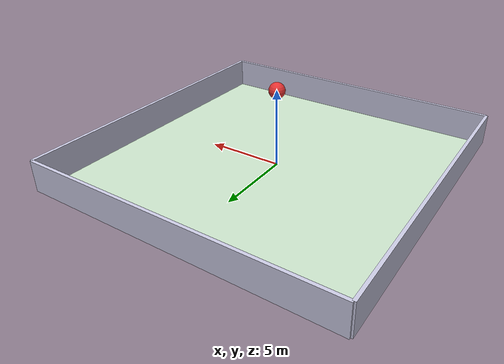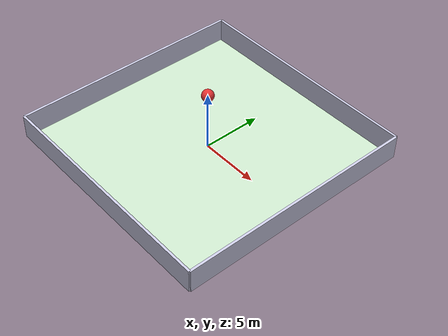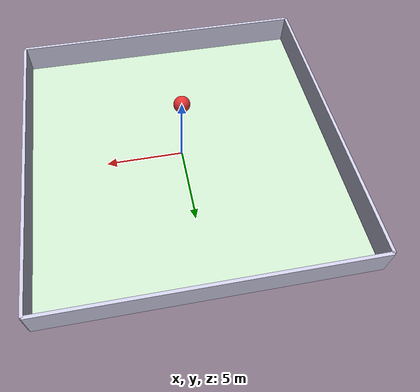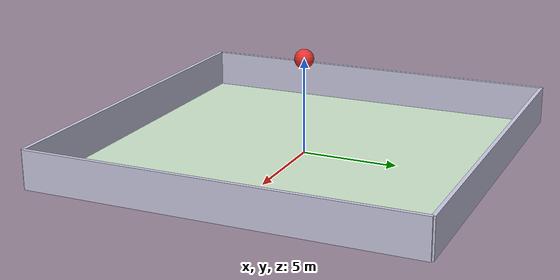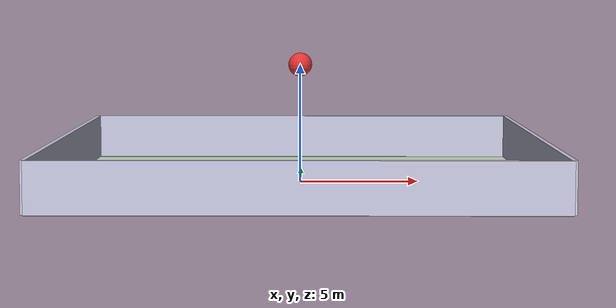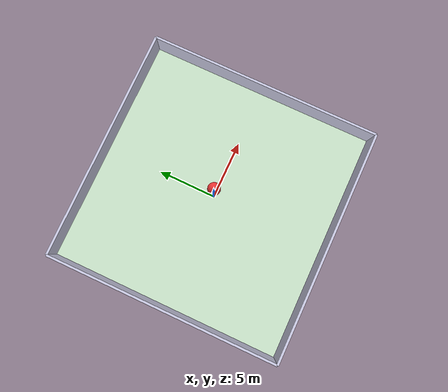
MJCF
<mujoco>
  <option timestep="0.01"/>

  <worldbody>
    <!-- 地面 -->
    <geom name="ground" type="plane" size="10 10 0.1" pos="0 0 0" rgba="0.8 0.9 0.8 1"/>

    <!-- 墙壁 -->
    <geom name="wall1" type="box" size="0.1 10 1" pos="-10 0 1" rgba="0.8 0.8 0.9 1"/>
    <geom name="wall2" type="box" size="0.1 10 1" pos="10 0 1" rgba="0.8 0.8 0.9 1"/>
    <geom name="wall3" type="box" size="10 0.1 1" pos="0 -10 1" rgba="0.8 0.8 0.9 1"/>
    <geom name="wall4" type="box" size="10 0.1 1" pos="0 10 1" rgba="0.8 0.8 0.9 1"/>

    <!-- 小球 -->
    <body name="ball" pos="0 0 5">
      <freejoint/>
      <geom name="ball_geom" type="sphere" size="0.5" rgba="0.9 0.2 0.2 1" mass="1"/>
    </body>
  </worldbody>

  <!-- 重力设置 -->
  <option gravity="0 0 -9.81"/>
</mujoco>
